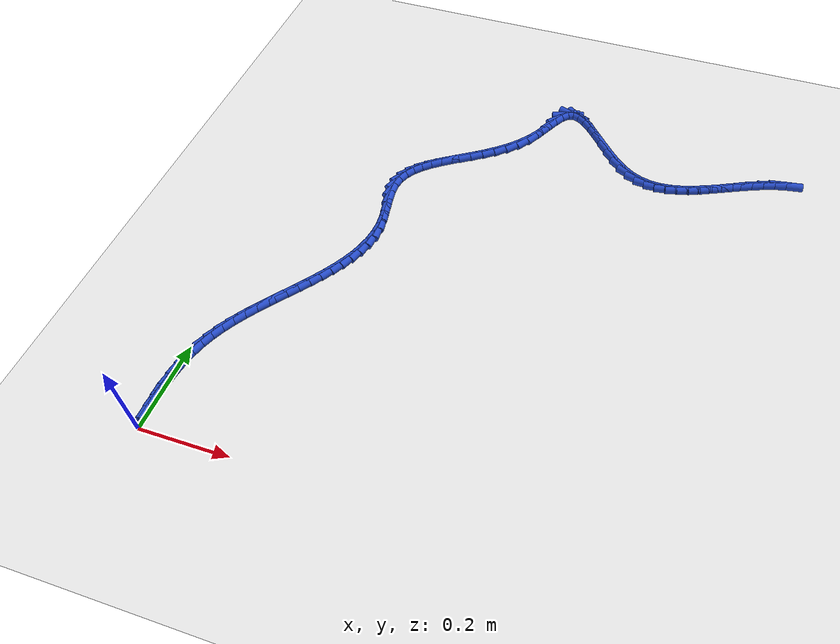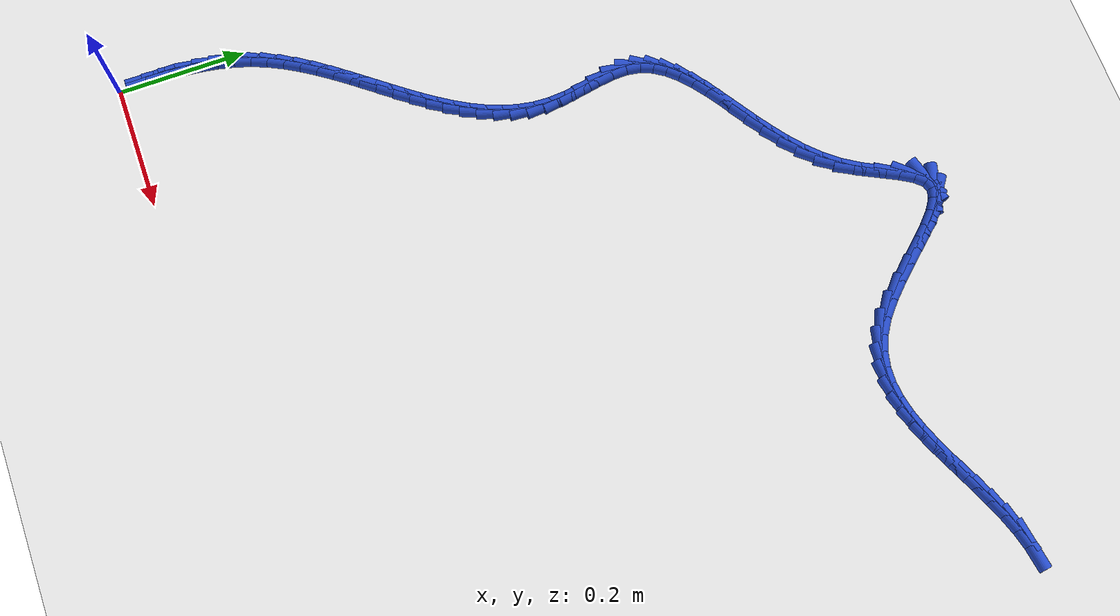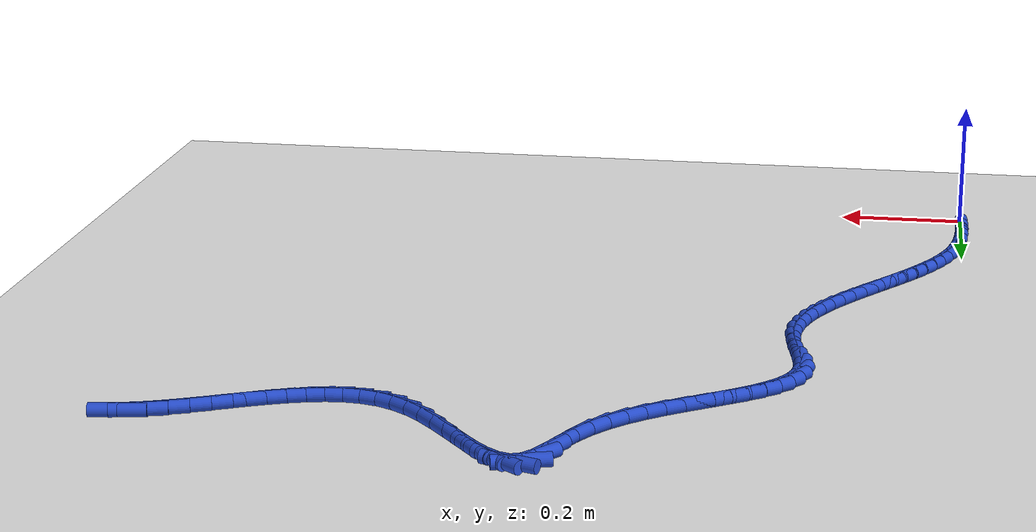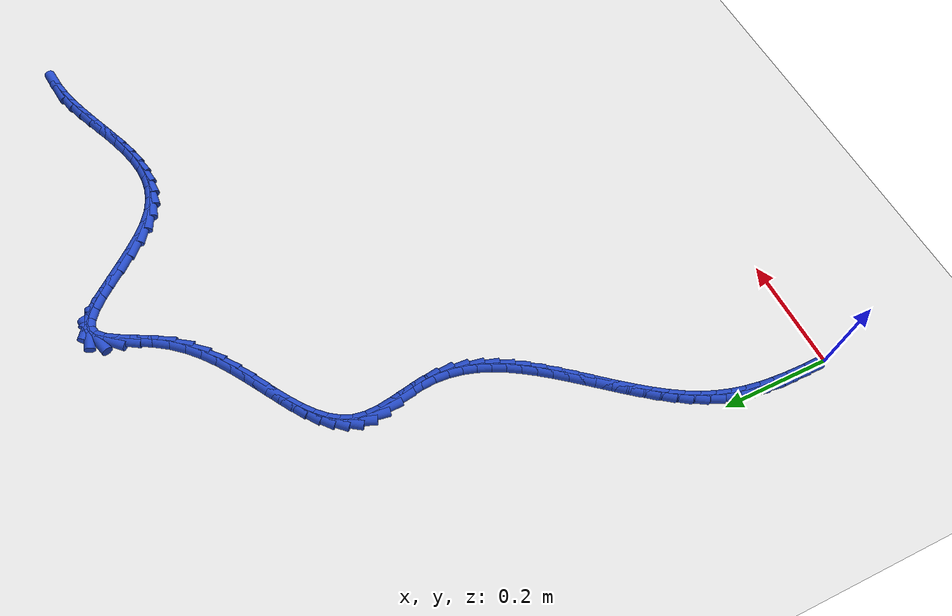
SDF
<sdf version="1.6">
 <world name="default">
  <model name="ground_plane">
   <static>1</static>
   <link name="link">
    <collision name="collision">
     <geometry><plane><normal>0 0 1</normal><size>100 100</size></plane></geometry>
     <surface><friction><ode><mu>100</mu><mu2>50</mu2></ode></friction></surface>
    </collision>
    <visual name="visual">
     <cast_shadows>0</cast_shadows>
     <geometry><plane><normal>0 0 1</normal><size>100 100</size></plane></geometry>
     <material>
      <script><uri>file://media/materials/scripts/gazebo.material</uri><name>Gazebo/WhiteGlow</name></script>
     </material>
    </visual>
   </link>
  </model>
  <model name="line">
   <link name="link_2">
    <pose>-0.000993579345261635 0.05327129770497839 0.01 0 1.57 1.5529341268489962</pose>
    <collision name="collision">
     <geometry><cylinder><radius>0.01</radius><length>0.08</length></cylinder></geometry>
    </collision>
    <visual name="visual">
     <material>
      <script><name>Gazebo/Blue</name><uri>file://media/materials/scripts/gazebo.material</uri></script>
     </material>
     <geometry><cylinder><radius>0.01</radius><length>0.08</length></cylinder></geometry>
    </visual>
   </link>
   <link name="link_3">
    <pose>-0.0005182153270759258 0.07988131563610236 0.01 0 1.57 1.5163877474611058</pose>
    <collision name="collision">
     <geometry><cylinder><radius>0.01</radius><length>0.08</length></cylinder></geometry>
    </collision>
    <visual name="visual">
     <material>
      <script><name>Gazebo/Blue</name><uri>file://media/materials/scripts/gazebo.material</uri></script>
     </material>
     <geometry><cylinder><radius>0.01</radius><length>0.08</length></cylinder></geometry>
    </visual>
   </link>
   <link name="link_4">
    <pose>0.0009230593838456076 0.10634501399168801 0.01 0 1.57 1.470240526559874</pose>
    <collision name="collision">
     <geometry><cylinder><radius>0.01</radius><length>0.08</length></cylinder></geometry>
    </collision>
    <visual name="visual">
     <material>
      <script><name>Gazebo/Blue</name><uri>file://media/materials/scripts/gazebo.material</uri></script>
     </material>
     <geometry><cylinder><radius>0.01</radius><length>0.08</length></cylinder></geometry>
    </visual>
   </link>
   <link name="link_5">
    <pose>0.003568600961646568 0.13256546855076415 0.01 0 1.57 1.4141264561284386</pose>
    <collision name="collision">
     <geometry><cylinder><radius>0.01</radius><length>0.08</length></cylinder></geometry>
    </collision>
    <visual name="visual">
     <material>
      <script><name>Gazebo/Blue</name><uri>file://media/materials/scripts/gazebo.material</uri></script>
     </material>
     <geometry><cylinder><radius>0.01</radius><length>0.08</length></cylinder></geometry>
    </visual>
   </link>
   <link name="link_6">
    <pose>0.007656765580470563 0.15844575509235964 0.01 0 1.57 1.347820590672643</pose>
    <collision name="collision">
     <geometry><cylinder><radius>0.01</radius><length>0.08</length></cylinder></geometry>
    </collision>
    <visual name="visual">
     <material>
      <script><name>Gazebo/Blue</name><uri>file://media/materials/scripts/gazebo.material</uri></script>
     </material>
     <geometry><cylinder><radius>0.01</radius><length>0.08</length></cylinder></geometry>
    </visual>
   </link>
   <link name="link_7">
    <pose>0.013425909414461193 0.18388894939550335 0.01 0 1.57 1.2714131816787544</pose>
    <collision name="collision">
     <geometry><cylinder><radius>0.01</radius><length>0.08</length></cylinder></geometry>
    </collision>
    <visual name="visual">
     <material>
      <script><name>Gazebo/Blue</name><uri>file://media/materials/scripts/gazebo.material</uri></script>
     </material>
     <geometry><cylinder><radius>0.01</radius><length>0.08</length></cylinder></geometry>
    </visual>
   </link>
   <link name="link_8">
    <pose>0.02111438863776207 0.20879812723922409 0.01 0 1.57 1.1870497626984773</pose>
    <collision name="collision">
     <geometry><cylinder><radius>0.01</radius><length>0.08</length></cylinder></geometry>
    </collision>
    <visual name="visual">
     <material>
      <script><name>Gazebo/Blue</name><uri>file://media/materials/scripts/gazebo.material</uri></script>
     </material>
     <geometry><cylinder><radius>0.01</radius><length>0.08</length></cylinder></geometry>
    </visual>
   </link>
   <link name="link_9">
    <pose>0.030922170363403986 0.2330890340069633 0.01 0 1.57 1.1091262469277718</pose>
    <collision name="collision">
     <geometry><cylinder><radius>0.01</radius><length>0.08</length></cylinder></geometry>
    </collision>
    <visual name="visual">
     <material>
      <script><name>Gazebo/Blue</name><uri>file://media/materials/scripts/gazebo.material</uri></script>
     </material>
     <geometry><cylinder><radius>0.01</radius><length>0.08</length></cylinder></geometry>
    </visual>
   </link>
   <link name="link_10">
    <pose>0.04271327307097997 0.25678828875724674 0.01 0 1.57 1.044774451590658</pose>
    <collision name="collision">
     <geometry><cylinder><radius>0.01</radius><length>0.08</length></cylinder></geometry>
    </collision>
    <visual name="visual">
     <material>
      <script><name>Gazebo/Blue</name><uri>file://media/materials/scripts/gazebo.material</uri></script>
     </material>
     <geometry><cylinder><radius>0.01</radius><length>0.08</length></cylinder></geometry>
    </visual>
   </link>
   <link name="link_11">
    <pose>0.05617796223108827 0.2799798545373734 0.01 0 1.57 0.9935671619011062</pose>
    <collision name="collision">
     <geometry><cylinder><radius>0.01</radius><length>0.08</length></cylinder></geometry>
    </collision>
    <visual name="visual">
     <material>
      <script><name>Gazebo/Blue</name><uri>file://media/materials/scripts/gazebo.material</uri></script>
     </material>
     <geometry><cylinder><radius>0.01</radius><length>0.08</length></cylinder></geometry>
    </visual>
   </link>
   <link name="link_12">
    <pose>0.07100504404337767 0.30274817600021203 0.01 0 1.57 0.9547754643559948</pose>
    <collision name="collision">
     <geometry><cylinder><radius>0.01</radius><length>0.08</length></cylinder></geometry>
    </collision>
    <visual name="visual">
     <material>
      <script><name>Gazebo/Blue</name><uri>file://media/materials/scripts/gazebo.material</uri></script>
     </material>
     <geometry><cylinder><radius>0.01</radius><length>0.08</length></cylinder></geometry>
    </visual>
   </link>
   <link name="link_13">
    <pose>0.086883324707497 0.32517769779863154 0.01 0 1.57 0.9276730989702013</pose>
    <collision name="collision">
     <geometry><cylinder><radius>0.01</radius><length>0.08</length></cylinder></geometry>
    </collision>
    <visual name="visual">
     <material>
      <script><name>Gazebo/Blue</name><uri>file://media/materials/scripts/gazebo.material</uri></script>
     </material>
     <geometry><cylinder><radius>0.01</radius><length>0.08</length></cylinder></geometry>
    </visual>
   </link>
   <link name="link_14">
    <pose>0.10350161042309504 0.34735286458550085 0.01 0 1.57 0.9116843677062412</pose>
    <collision name="collision">
     <geometry><cylinder><radius>0.01</radius><length>0.08</length></cylinder></geometry>
    </collision>
    <visual name="visual">
     <material>
      <script><name>Gazebo/Blue</name><uri>file://media/materials/scripts/gazebo.material</uri></script>
     </material>
     <geometry><cylinder><radius>0.01</radius><length>0.08</length></cylinder></geometry>
    </visual>
   </link>
   <link name="link_15">
    <pose>0.12054870738982067 0.36935812101368887 0.01 0 1.57 0.9064645990081811</pose>
    <collision name="collision">
     <geometry><cylinder><radius>0.01</radius><length>0.08</length></cylinder></geometry>
    </collision>
    <visual name="visual">
     <material>
      <script><name>Gazebo/Blue</name><uri>file://media/materials/scripts/gazebo.material</uri></script>
     </material>
     <geometry><cylinder><radius>0.01</radius><length>0.08</length></cylinder></geometry>
    </visual>
   </link>
   <link name="link_16">
    <pose>0.13771342180732257 0.39127791173606435 0.01 0 1.57 0.9119398595168361</pose>
    <collision name="collision">
     <geometry><cylinder><radius>0.01</radius><length>0.08</length></cylinder></geometry>
    </collision>
    <visual name="visual">
     <material>
      <script><name>Gazebo/Blue</name><uri>file://media/materials/scripts/gazebo.material</uri></script>
     </material>
     <geometry><cylinder><radius>0.01</radius><length>0.08</length></cylinder></geometry>
    </visual>
   </link>
   <link name="link_17">
    <pose>0.15468455987524968 0.4131966814054964 0.01 0 1.57 0.9283221466589692</pose>
    <collision name="collision">
     <geometry><cylinder><radius>0.01</radius><length>0.08</length></cylinder></geometry>
    </collision>
    <visual name="visual">
     <material>
      <script><name>Gazebo/Blue</name><uri>file://media/materials/scripts/gazebo.material</uri></script>
     </material>
     <geometry><cylinder><radius>0.01</radius><length>0.08</length></cylinder></geometry>
    </visual>
   </link>
   <link name="link_18">
    <pose>0.17115092779325067 0.4351988746748538 0.01 0 1.57 0.9561048122682099</pose>
    <collision name="collision">
     <geometry><cylinder><radius>0.01</radius><length>0.08</length></cylinder></geometry>
    </collision>
    <visual name="visual">
     <material>
      <script><name>Gazebo/Blue</name><uri>file://media/materials/scripts/gazebo.material</uri></script>
     </material>
     <geometry><cylinder><radius>0.01</radius><length>0.08</length></cylinder></geometry>
    </visual>
   </link>
   <link name="link_19">
    <pose>0.1868013317609745 0.45736893619700547 0.01 0 1.57 0.9960310596495743</pose>
    <collision name="collision">
     <geometry><cylinder><radius>0.01</radius><length>0.08</length></cylinder></geometry>
    </collision>
    <visual name="visual">
     <material>
      <script><name>Gazebo/Blue</name><uri>file://media/materials/scripts/gazebo.material</uri></script>
     </material>
     <geometry><cylinder><radius>0.01</radius><length>0.08</length></cylinder></geometry>
    </visual>
   </link>
   <link name="link_20">
    <pose>0.2013245779780699 0.4797913106248205 0.01 0 1.57 1.0490150875931776</pose>
    <collision name="collision">
     <geometry><cylinder><radius>0.01</radius><length>0.08</length></cylinder></geometry>
    </collision>
    <visual name="visual">
     <material>
      <script><name>Gazebo/Blue</name><uri>file://media/materials/scripts/gazebo.material</uri></script>
     </material>
     <geometry><cylinder><radius>0.01</radius><length>0.08</length></cylinder></geometry>
    </visual>
   </link>
   <link name="link_21">
    <pose>0.21440947264418564 0.5025504426111673 0.01 0 1.57 1.1159816032242178</pose>
    <collision name="collision">
     <geometry><cylinder><radius>0.01</radius><length>0.08</length></cylinder></geometry>
    </collision>
    <visual name="visual">
     <material>
      <script><name>Gazebo/Blue</name><uri>file://media/materials/scripts/gazebo.material</uri></script>
     </material>
     <geometry><cylinder><radius>0.01</radius><length>0.08</length></cylinder></geometry>
    </visual>
   </link>
   <link name="link_22">
    <pose>0.22574482195897055 0.525730776808915 0.01 0 1.57 1.1975822549678123</pose>
    <collision name="collision">
     <geometry><cylinder><radius>0.01</radius><length>0.08</length></cylinder></geometry>
    </collision>
    <visual name="visual">
     <material>
      <script><name>Gazebo/Blue</name><uri>file://media/materials/scripts/gazebo.material</uri></script>
     </material>
     <geometry><cylinder><radius>0.01</radius><length>0.08</length></cylinder></geometry>
    </visual>
   </link>
   <link name="link_23">
    <pose>0.23501943212207346 0.5494167578709327 0.01 0 1.57 1.29376698057198</pose>
    <collision name="collision">
     <geometry><cylinder><radius>0.01</radius><length>0.08</length></cylinder></geometry>
    </collision>
    <visual name="visual">
     <material>
      <script><name>Gazebo/Blue</name><uri>file://media/materials/scripts/gazebo.material</uri></script>
     </material>
     <geometry><cylinder><radius>0.01</radius><length>0.08</length></cylinder></geometry>
    </visual>
   </link>
   <link name="link_24">
    <pose>0.24192210933314323 0.5736928304500892 0.01 0 1.57 1.403265335978539</pose>
    <collision name="collision">
     <geometry><cylinder><radius>0.01</radius><length>0.08</length></cylinder></geometry>
    </collision>
    <visual name="visual">
     <material>
      <script><name>Gazebo/Blue</name><uri>file://media/materials/scripts/gazebo.material</uri></script>
     </material>
     <geometry><cylinder><radius>0.01</radius><length>0.08</length></cylinder></geometry>
    </visual>
   </link>
   <link name="link_25">
    <pose>0.2461416597918286 0.5986434391992534 0.01 0 1.57 1.5231758229309047</pose>
    <collision name="collision">
     <geometry><cylinder><radius>0.01</radius><length>0.08</length></cylinder></geometry>
    </collision>
    <visual name="visual">
     <material>
      <script><name>Gazebo/Blue</name><uri>file://media/materials/scripts/gazebo.material</uri></script>
     </material>
     <geometry><cylinder><radius>0.01</radius><length>0.08</length></cylinder></geometry>
    </visual>
   </link>
   <link name="link_26">
    <pose>0.2473668896977783 0.624353028771294 0.01 0 1.57 -1.494933936933465</pose>
    <collision name="collision">
     <geometry><cylinder><radius>0.01</radius><length>0.08</length></cylinder></geometry>
    </collision>
    <visual name="visual">
     <material>
      <script><name>Gazebo/Blue</name><uri>file://media/materials/scripts/gazebo.material</uri></script>
     </material>
     <geometry><cylinder><radius>0.01</radius><length>0.08</length></cylinder></geometry>
    </visual>
   </link>
   <link name="link_27">
    <pose>0.24535043959928426 0.6508823844252022 0.01 0 1.57 -1.4087715480247576</pose>
    <collision name="collision">
     <geometry><cylinder><radius>0.01</radius><length>0.08</length></cylinder></geometry>
    </collision>
    <visual name="visual">
     <material>
      <script><name>Gazebo/Blue</name><uri>file://media/materials/scripts/gazebo.material</uri></script>
     </material>
     <geometry><cylinder><radius>0.01</radius><length>0.08</length></cylinder></geometry>
    </visual>
   </link>
   <link name="link_28">
    <pose>0.24093619177847547 0.6778878364745462 0.01 0 1.57 -1.384444427604644</pose>
    <collision name="collision">
     <geometry><cylinder><radius>0.01</radius><length>0.08</length></cylinder></geometry>
    </collision>
    <visual name="visual">
     <material>
      <script><name>Gazebo/Blue</name><uri>file://media/materials/scripts/gazebo.material</uri></script>
     </material>
     <geometry><cylinder><radius>0.01</radius><length>0.08</length></cylinder></geometry>
    </visual>
   </link>
   <link name="link_29">
    <pose>0.23588361206379785 0.7046863657727563 0.01 0 1.57 -1.4212126874905262</pose>
    <collision name="collision">
     <geometry><cylinder><radius>0.01</radius><length>0.08</length></cylinder></geometry>
    </collision>
    <visual name="visual">
     <material>
      <script><name>Gazebo/Blue</name><uri>file://media/materials/scripts/gazebo.material</uri></script>
     </material>
     <geometry><cylinder><radius>0.01</radius><length>0.08</length></cylinder></geometry>
    </visual>
   </link>
   <link name="link_30">
    <pose>0.23198052940571381 0.7305844407408563 0.01 0 1.57 -1.5310808358699863</pose>
    <collision name="collision">
     <geometry><cylinder><radius>0.01</radius><length>0.08</length></cylinder></geometry>
    </collision>
    <visual name="visual">
     <material>
      <script><name>Gazebo/Blue</name><uri>file://media/materials/scripts/gazebo.material</uri></script>
     </material>
     <geometry><cylinder><radius>0.01</radius><length>0.08</length></cylinder></geometry>
    </visual>
   </link>
   <link name="link_31">
    <pose>0.23101477275468582 0.7548885297998691 0.01 0 1.57 1.4130602434443644</pose>
    <collision name="collision">
     <geometry><cylinder><radius>0.01</radius><length>0.08</length></cylinder></geometry>
    </collision>
    <visual name="visual">
     <material>
      <script><name>Gazebo/Blue</name><uri>file://media/materials/scripts/gazebo.material</uri></script>
     </material>
     <geometry><cylinder><radius>0.01</radius><length>0.08</length></cylinder></geometry>
    </visual>
   </link>
   <link name="link_32">
    <pose>0.23453396850470723 0.7770138450539543 0.01 0 1.57 1.1893072501443114</pose>
    <collision name="collision">
     <geometry><cylinder><radius>0.01</radius><length>0.08</length></cylinder></geometry>
    </collision>
    <visual name="visual">
     <material>
      <script><name>Gazebo/Blue</name><uri>file://media/materials/scripts/gazebo.material</uri></script>
     </material>
     <geometry><cylinder><radius>0.01</radius><length>0.08</length></cylinder></geometry>
    </visual>
   </link>
   <link name="link_33">
    <pose>0.242575088873368 0.7970594968201021 0.01 0 1.57 0.9906154916773493</pose>
    <collision name="collision">
     <geometry><cylinder><radius>0.01</radius><length>0.08</length></cylinder></geometry>
    </collision>
    <visual name="visual">
     <material>
      <script><name>Gazebo/Blue</name><uri>file://media/materials/scripts/gazebo.material</uri></script>
     </material>
     <geometry><cylinder><radius>0.01</radius><length>0.08</length></cylinder></geometry>
    </visual>
   </link>
   <link name="link_34">
    <pose>0.25458927150356236 0.8153898124483653 0.01 0 1.57 0.8329544414922904</pose>
    <collision name="collision">
     <geometry><cylinder><radius>0.01</radius><length>0.08</length></cylinder></geometry>
    </collision>
    <visual name="visual">
     <material>
      <script><name>Gazebo/Blue</name><uri>file://media/materials/scripts/gazebo.material</uri></script>
     </material>
     <geometry><cylinder><radius>0.01</radius><length>0.08</length></cylinder></geometry>
    </visual>
   </link>
   <link name="link_35">
    <pose>0.27002636674127845 0.8323697020694663 0.01 0 1.57 0.7180018857014266</pose>
    <collision name="collision">
     <geometry><cylinder><radius>0.01</radius><length>0.08</length></cylinder></geometry>
    </collision>
    <visual name="visual">
     <material>
      <script><name>Gazebo/Blue</name><uri>file://media/materials/scripts/gazebo.material</uri></script>
     </material>
     <geometry><cylinder><radius>0.01</radius><length>0.08</length></cylinder></geometry>
    </visual>
   </link>
   <link name="link_36">
    <pose>0.2883362249325047 0.848364075814129 0.01 0 1.57 0.640373728744902</pose>
    <collision name="collision">
     <geometry><cylinder><radius>0.01</radius><length>0.08</length></cylinder></geometry>
    </collision>
    <visual name="visual">
     <material>
      <script><name>Gazebo/Blue</name><uri>file://media/materials/scripts/gazebo.material</uri></script>
     </material>
     <geometry><cylinder><radius>0.01</radius><length>0.08</length></cylinder></geometry>
    </visual>
   </link>
   <link name="link_37">
    <pose>0.30896869642322916 0.8637378438130758 0.01 0 1.57 0.5935884004744302</pose>
    <collision name="collision">
     <geometry><cylinder><radius>0.01</radius><length>0.08</length></cylinder></geometry>
    </collision>
    <visual name="visual">
     <material>
      <script><name>Gazebo/Blue</name><uri>file://media/materials/scripts/gazebo.material</uri></script>
     </material>
     <geometry><cylinder><radius>0.01</radius><length>0.08</length></cylinder></geometry>
    </visual>
   </link>
   <link name="link_38">
    <pose>0.33137363155943994 0.8788559161970296 0.01 0 1.57 0.5724848572416695</pose>
    <collision name="collision">
     <geometry><cylinder><radius>0.01</radius><length>0.08</length></cylinder></geometry>
    </collision>
    <visual name="visual">
     <material>
      <script><name>Gazebo/Blue</name><uri>file://media/materials/scripts/gazebo.material</uri></script>
     </material>
     <geometry><cylinder><radius>0.01</radius><length>0.08</length></cylinder></geometry>
    </visual>
   </link>
   <link name="link_39">
    <pose>0.3550008806871256 0.8940832030967137 0.01 0 1.57 0.573673986408293</pose>
    <collision name="collision">
     <geometry><cylinder><radius>0.01</radius><length>0.08</length></cylinder></geometry>
    </collision>
    <visual name="visual">
     <material>
      <script><name>Gazebo/Blue</name><uri>file://media/materials/scripts/gazebo.material</uri></script>
     </material>
     <geometry><cylinder><radius>0.01</radius><length>0.08</length></cylinder></geometry>
    </visual>
   </link>
   <link name="link_40">
    <pose>0.379300294152274 0.909784614642851 0.01 0 1.57 0.5953228110911825</pose>
    <collision name="collision">
     <geometry><cylinder><radius>0.01</radius><length>0.08</length></cylinder></geometry>
    </collision>
    <visual name="visual">
     <material>
      <script><name>Gazebo/Blue</name><uri>file://media/materials/scripts/gazebo.material</uri></script>
     </material>
     <geometry><cylinder><radius>0.01</radius><length>0.08</length></cylinder></geometry>
    </visual>
   </link>
   <link name="link_41">
    <pose>0.40372172230087355 0.9263250609661642 0.01 0 1.57 0.6367835692463997</pose>
    <collision name="collision">
     <geometry><cylinder><radius>0.01</radius><length>0.08</length></cylinder></geometry>
    </collision>
    <visual name="visual">
     <material>
      <script><name>Gazebo/Blue</name><uri>file://media/materials/scripts/gazebo.material</uri></script>
     </material>
     <geometry><cylinder><radius>0.01</radius><length>0.08</length></cylinder></geometry>
    </visual>
   </link>
   <link name="link_42">
    <pose>0.42771501547891244 0.9440694521973765 0.01 0 1.57 0.6981664038873943</pose>
    <collision name="collision">
     <geometry><cylinder><radius>0.01</radius><length>0.08</length></cylinder></geometry>
    </collision>
    <visual name="visual">
     <material>
      <script><name>Gazebo/Blue</name><uri>file://media/materials/scripts/gazebo.material</uri></script>
     </material>
     <geometry><cylinder><radius>0.01</radius><length>0.08</length></cylinder></geometry>
    </visual>
   </link>
   <link name="link_43">
    <pose>0.45073002403237855 0.9633826984672105 0.01 0 1.57 0.779792260635435</pose>
    <collision name="collision">
     <geometry><cylinder><radius>0.01</radius><length>0.08</length></cylinder></geometry>
    </collision>
    <visual name="visual">
     <material>
      <script><name>Gazebo/Blue</name><uri>file://media/materials/scripts/gazebo.material</uri></script>
     </material>
     <geometry><cylinder><radius>0.01</radius><length>0.08</length></cylinder></geometry>
    </visual>
   </link>
   <link name="link_44">
    <pose>0.4722165983072607 0.98462970990639 0.01 0 1.57 0.8814311253326867</pose>
    <collision name="collision">
     <geometry><cylinder><radius>0.01</radius><length>0.08</length></cylinder></geometry>
    </collision>
    <visual name="visual">
     <material>
      <script><name>Gazebo/Blue</name><uri>file://media/materials/scripts/gazebo.material</uri></script>
     </material>
     <geometry><cylinder><radius>0.01</radius><length>0.08</length></cylinder></geometry>
    </visual>
   </link>
   <link name="link_45">
    <pose>0.4916245886495465 1.0081753966456368 0.01 0 1.57 0.9994162548701124</pose>
    <collision name="collision">
     <geometry><cylinder><radius>0.01</radius><length>0.08</length></cylinder></geometry>
    </collision>
    <visual name="visual">
     <material>
      <script><name>Gazebo/Blue</name><uri>file://media/materials/scripts/gazebo.material</uri></script>
     </material>
     <geometry><cylinder><radius>0.01</radius><length>0.08</length></cylinder></geometry>
    </visual>
   </link>
   <link name="link_46">
    <pose>0.508434108664295 1.0343210906718612 0.01 0 1.57 1.087511052399249</pose>
    <collision name="collision">
     <geometry><cylinder><radius>0.01</radius><length>0.08</length></cylinder></geometry>
    </collision>
    <visual name="visual">
     <material>
      <script><name>Gazebo/Blue</name><uri>file://media/materials/scripts/gazebo.material</uri></script>
     </material>
     <geometry><cylinder><radius>0.01</radius><length>0.08</length></cylinder></geometry>
    </visual>
   </link>
   <link name="link_47">
    <pose>0.5228636943702706 1.061816819589835 0.01 0 1.57 1.1060948280510068</pose>
    <collision name="collision">
     <geometry><cylinder><radius>0.01</radius><length>0.08</length></cylinder></geometry>
    </collision>
    <visual name="visual">
     <material>
      <script><name>Gazebo/Blue</name><uri>file://media/materials/scripts/gazebo.material</uri></script>
     </material>
     <geometry><cylinder><radius>0.01</radius><length>0.08</length></cylinder></geometry>
    </visual>
   </link>
   <link name="link_48">
    <pose>0.5358946379844565 1.0878101853319329 0.01 0 1.57 1.040328941499191</pose>
    <collision name="collision">
     <geometry><cylinder><radius>0.01</radius><length>0.08</length></cylinder></geometry>
    </collision>
    <visual name="visual">
     <material>
      <script><name>Gazebo/Blue</name><uri>file://media/materials/scripts/gazebo.material</uri></script>
     </material>
     <geometry><cylinder><radius>0.01</radius><length>0.08</length></cylinder></geometry>
    </visual>
   </link>
   <link name="link_49">
    <pose>0.5485433633436336 1.1093749840592864 0.01 0 1.57 0.8191066402095308</pose>
    <collision name="collision">
     <geometry><cylinder><radius>0.01</radius><length>0.08</length></cylinder></geometry>
    </collision>
    <visual name="visual">
     <material>
      <script><name>Gazebo/Blue</name><uri>file://media/materials/scripts/gazebo.material</uri></script>
     </material>
     <geometry><cylinder><radius>0.01</radius><length>0.08</length></cylinder></geometry>
    </visual>
   </link>
   <link name="link_50">
    <pose>0.5618262942845831 1.1235850119330275 0.01 0 1.57 0.28967364256238726</pose>
    <collision name="collision">
     <geometry><cylinder><radius>0.01</radius><length>0.08</length></cylinder></geometry>
    </collision>
    <visual name="visual">
     <material>
      <script><name>Gazebo/Blue</name><uri>file://media/materials/scripts/gazebo.material</uri></script>
     </material>
     <geometry><cylinder><radius>0.01</radius><length>0.08</length></cylinder></geometry>
    </visual>
   </link>
   <link name="link_51">
    <pose>0.5766376961548272 1.1279996598876025 0.01 0 1.57 -0.28343651736742365</pose>
    <collision name="collision">
     <geometry><cylinder><radius>0.01</radius><length>0.08</length></cylinder></geometry>
    </collision>
    <visual name="visual">
     <material>
      <script><name>Gazebo/Blue</name><uri>file://media/materials/scripts/gazebo.material</uri></script>
     </material>
     <geometry><cylinder><radius>0.01</radius><length>0.08</length></cylinder></geometry>
    </visual>
   </link>
   <link name="link_52">
    <pose>0.5931113772725999 1.123201227547556 0.01 0 1.57 -0.5988150294666741</pose>
    <collision name="collision">
     <geometry><cylinder><radius>0.01</radius><length>0.08</length></cylinder></geometry>
    </collision>
    <visual name="visual">
     <material>
      <script><name>Gazebo/Blue</name><uri>file://media/materials/scripts/gazebo.material</uri></script>
     </material>
     <geometry><cylinder><radius>0.01</radius><length>0.08</length></cylinder></geometry>
    </visual>
   </link>
   <link name="link_53">
    <pose>0.6110890023099238 1.1109333208741223 0.01 0 1.57 -0.7497360749046943</pose>
    <collision name="collision">
     <geometry><cylinder><radius>0.01</radius><length>0.08</length></cylinder></geometry>
    </collision>
    <visual name="visual">
     <material>
      <script><name>Gazebo/Blue</name><uri>file://media/materials/scripts/gazebo.material</uri></script>
     </material>
     <geometry><cylinder><radius>0.01</radius><length>0.08</length></cylinder></geometry>
    </visual>
   </link>
   <link name="link_54">
    <pose>0.6304116306218182 1.0929419520368484 0.01 0 1.57 -0.8197587748956852</pose>
    <collision name="collision">
     <geometry><cylinder><radius>0.01</radius><length>0.08</length></cylinder></geometry>
    </collision>
    <visual name="visual">
     <material>
      <script><name>Gazebo/Blue</name><uri>file://media/materials/scripts/gazebo.material</uri></script>
     </material>
     <geometry><cylinder><radius>0.01</radius><length>0.08</length></cylinder></geometry>
    </visual>
   </link>
   <link name="link_55">
    <pose>0.6509203215633032 1.0709731332052836 0.01 0 1.57 -0.8435893376191165</pose>
    <collision name="collision">
     <geometry><cylinder><radius>0.01</radius><length>0.08</length></cylinder></geometry>
    </collision>
    <visual name="visual">
     <material>
      <script><name>Gazebo/Blue</name><uri>file://media/materials/scripts/gazebo.material</uri></script>
     </material>
     <geometry><cylinder><radius>0.01</radius><length>0.08</length></cylinder></geometry>
    </visual>
   </link>
   <link name="link_56">
    <pose>0.6724561344893986 1.0467728765489757 0.01 0 1.57 -0.8338143996841013</pose>
    <collision name="collision">
     <geometry><cylinder><radius>0.01</radius><length>0.08</length></cylinder></geometry>
    </collision>
    <visual name="visual">
     <material>
      <script><name>Gazebo/Blue</name><uri>file://media/materials/scripts/gazebo.material</uri></script>
     </material>
     <geometry><cylinder><radius>0.01</radius><length>0.08</length></cylinder></geometry>
    </visual>
   </link>
   <link name="link_57">
    <pose>0.6948601287551242 1.0220871942374734 0.01 0 1.57 -0.7920992238722865</pose>
    <collision name="collision">
     <geometry><cylinder><radius>0.01</radius><length>0.08</length></cylinder></geometry>
    </collision>
    <visual name="visual">
     <material>
      <script><name>Gazebo/Blue</name><uri>file://media/materials/scripts/gazebo.material</uri></script>
     </material>
     <geometry><cylinder><radius>0.01</radius><length>0.08</length></cylinder></geometry>
    </visual>
   </link>
   <link name="link_58">
    <pose>0.7179733637154994 0.998662098440325 0.01 0 1.57 -0.7119170840673851</pose>
    <collision name="collision">
     <geometry><cylinder><radius>0.01</radius><length>0.08</length></cylinder></geometry>
    </collision>
    <visual name="visual">
     <material>
      <script><name>Gazebo/Blue</name><uri>file://media/materials/scripts/gazebo.material</uri></script>
     </material>
     <geometry><cylinder><radius>0.01</radius><length>0.08</length></cylinder></geometry>
    </visual>
   </link>
   <link name="link_59">
    <pose>0.741636898725544 0.9782436013270788 0.01 0 1.57 -0.5785331346976742</pose>
    <collision name="collision">
     <geometry><cylinder><radius>0.01</radius><length>0.08</length></cylinder></geometry>
    </collision>
    <visual name="visual">
     <material>
      <script><name>Gazebo/Blue</name><uri>file://media/materials/scripts/gazebo.material</uri></script>
     </material>
     <geometry><cylinder><radius>0.01</radius><length>0.08</length></cylinder></geometry>
    </visual>
   </link>
   <link name="link_60">
    <pose>0.7656945539928224 0.9625321733921062 0.01 0 1.57 -0.40355195338283684</pose>
    <collision name="collision">
     <geometry><cylinder><radius>0.01</radius><length>0.08</length></cylinder></geometry>
    </collision>
    <visual name="visual">
     <material>
      <script><name>Gazebo/Blue</name><uri>file://media/materials/scripts/gazebo.material</uri></script>
     </material>
     <geometry><cylinder><radius>0.01</radius><length>0.08</length></cylinder></geometry>
    </visual>
   </link>
   <link name="link_61">
    <pose>0.7900567395955146 0.9521298511463018 0.01 0 1.57 -0.2241500601812755</pose>
    <collision name="collision">
     <geometry><cylinder><radius>0.01</radius><length>0.08</length></cylinder></geometry>
    </collision>
    <visual name="visual">
     <material>
      <script><name>Gazebo/Blue</name><uri>file://media/materials/scripts/gazebo.material</uri></script>
     </material>
     <geometry><cylinder><radius>0.01</radius><length>0.08</length></cylinder></geometry>
    </visual>
   </link>
   <link name="link_62">
    <pose>0.8147022189312214 0.946511148126872 0.01 0 1.57 -0.0566192326462113</pose>
    <collision name="collision">
     <geometry><cylinder><radius>0.01</radius><length>0.08</length></cylinder></geometry>
    </collision>
    <visual name="visual">
     <material>
      <script><name>Gazebo/Blue</name><uri>file://media/materials/scripts/gazebo.material</uri></script>
     </material>
     <geometry><cylinder><radius>0.01</radius><length>0.08</length></cylinder></geometry>
    </visual>
   </link>
   <link name="link_63">
    <pose>0.8396128690153837 0.9450992171518168 0.01 0 1.57 0.08793625953918975</pose>
    <collision name="collision">
     <geometry><cylinder><radius>0.01</radius><length>0.08</length></cylinder></geometry>
    </collision>
    <visual name="visual">
     <material>
      <script><name>Gazebo/Blue</name><uri>file://media/materials/scripts/gazebo.material</uri></script>
     </material>
     <geometry><cylinder><radius>0.01</radius><length>0.08</length></cylinder></geometry>
    </visual>
   </link>
   <link name="link_64">
    <pose>0.864770566863442 0.9473172110391358 0.01 0 1.57 0.2047229971440268</pose>
    <collision name="collision">
     <geometry><cylinder><radius>0.01</radius><length>0.08</length></cylinder></geometry>
    </collision>
    <visual name="visual">
     <material>
      <script><name>Gazebo/Blue</name><uri>file://media/materials/scripts/gazebo.material</uri></script>
     </material>
     <geometry><cylinder><radius>0.01</radius><length>0.08</length></cylinder></geometry>
    </visual>
   </link>
   <link name="link_65">
    <pose>0.8901571894908371 0.9525882826068293 0.01 0 1.57 0.29389485561547296</pose>
    <collision name="collision">
     <geometry><cylinder><radius>0.01</radius><length>0.08</length></cylinder></geometry>
    </collision>
    <visual name="visual">
     <material>
      <script><name>Gazebo/Blue</name><uri>file://media/materials/scripts/gazebo.material</uri></script>
     </material>
     <geometry><cylinder><radius>0.01</radius><length>0.08</length></cylinder></geometry>
    </visual>
   </link>
   <link name="link_66">
    <pose>0.9157546139130097 0.9603355846728961 0.01 0 1.57 0.35793403908037064</pose>
    <collision name="collision">
     <geometry><cylinder><radius>0.01</radius><length>0.08</length></cylinder></geometry>
    </collision>
    <visual name="visual">
     <material>
      <script><name>Gazebo/Blue</name><uri>file://media/materials/scripts/gazebo.material</uri></script>
     </material>
     <geometry><cylinder><radius>0.01</radius><length>0.08</length></cylinder></geometry>
    </visual>
   </link>
   <link name="link_67">
    <pose>0.9415447171454006 0.9699822700553372 0.01 0 1.57 0.39972354235509167</pose>
    <collision name="collision">
     <geometry><cylinder><radius>0.01</radius><length>0.08</length></cylinder></geometry>
    </collision>
    <visual name="visual">
     <material>
      <script><name>Gazebo/Blue</name><uri>file://media/materials/scripts/gazebo.material</uri></script>
     </material>
     <geometry><cylinder><radius>0.01</radius><length>0.08</length></cylinder></geometry>
    </visual>
   </link>
   <link name="link_68">
    <pose>0.9675093762034503 0.9809514915721517 0.01 0 1.57 0.4215931000063918</pose>
    <collision name="collision">
     <geometry><cylinder><radius>0.01</radius><length>0.08</length></cylinder></geometry>
    </collision>
    <visual name="visual">
     <material>
      <script><name>Gazebo/Blue</name><uri>file://media/materials/scripts/gazebo.material</uri></script>
     </material>
     <geometry><cylinder><radius>0.01</radius><length>0.08</length></cylinder></geometry>
    </visual>
   </link>
   <link name="link_69">
    <pose>0.9936304681025997 0.9926664020413394 0.01 0 1.57 0.4249743791228145</pose>
    <collision name="collision">
     <geometry><cylinder><radius>0.01</radius><length>0.08</length></cylinder></geometry>
    </collision>
    <visual name="visual">
     <material>
      <script><name>Gazebo/Blue</name><uri>file://media/materials/scripts/gazebo.material</uri></script>
     </material>
     <geometry><cylinder><radius>0.01</radius><length>0.08</length></cylinder></geometry>
    </visual>
   </link>
   <link name="link_70">
    <pose>1.0198898698582892 1.0045501542809 0.01 0 1.57 0.4103301031132899</pose>
    <collision name="collision">
     <geometry><cylinder><radius>0.01</radius><length>0.08</length></cylinder></geometry>
    </collision>
    <visual name="visual">
     <material>
      <script><name>Gazebo/Blue</name><uri>file://media/materials/scripts/gazebo.material</uri></script>
     </material>
     <geometry><cylinder><radius>0.01</radius><length>0.08</length></cylinder></geometry>
    </visual>
   </link>
   <link name="link_71">
    <pose>1.0462694584859602 1.016025901108834 0.01 0 1.57 0.37718913463953535</pose>
    <collision name="collision">
     <geometry><cylinder><radius>0.01</radius><length>0.08</length></cylinder></geometry>
    </collision>
    <visual name="visual">
     <material>
      <script><name>Gazebo/Blue</name><uri>file://media/materials/scripts/gazebo.material</uri></script>
     </material>
     <geometry><cylinder><radius>0.01</radius><length>0.08</length></cylinder></geometry>
    </visual>
   </link>
   <link name="link_72">
    <pose>1.0727511110010526 1.0265167953431402 0.01 0 1.57 0.3242553448324908</pose>
    <collision name="collision">
     <geometry><cylinder><radius>0.01</radius><length>0.08</length></cylinder></geometry>
    </collision>
    <visual name="visual">
     <material>
      <script><name>Gazebo/Blue</name><uri>file://media/materials/scripts/gazebo.material</uri></script>
     </material>
     <geometry><cylinder><radius>0.01</radius><length>0.08</length></cylinder></geometry>
    </visual>
   </link>
   <link name="link_73">
    <pose>1.0993167044190075 1.035445989801819 0.01 0 1.57 0.2496662042038173</pose>
    <collision name="collision">
     <geometry><cylinder><radius>0.01</radius><length>0.08</length></cylinder></geometry>
    </collision>
    <visual name="visual">
     <material>
      <script><name>Gazebo/Blue</name><uri>file://media/materials/scripts/gazebo.material</uri></script>
     </material>
     <geometry><cylinder><radius>0.01</radius><length>0.08</length></cylinder></geometry>
    </visual>
   </link>
   <link name="link_74">
    <pose>1.125948115755266 1.0422366373028702 0.01 0 1.57 0.1516783117332457</pose>
    <collision name="collision">
     <geometry><cylinder><radius>0.01</radius><length>0.08</length></cylinder></geometry>
    </collision>
    <visual name="visual">
     <material>
      <script><name>Gazebo/Blue</name><uri>file://media/materials/scripts/gazebo.material</uri></script>
     </material>
     <geometry><cylinder><radius>0.01</radius><length>0.08</length></cylinder></geometry>
    </visual>
   </link>
   <link name="link_292">
    <pose>-0.0014161732133022792 0.0534113457797597 0.01 0 1.57 -1.5442880733887894</pose>
    <collision name="collision">
     <geometry><cylinder><radius>0.01</radius><length>0.08</length></cylinder></geometry>
    </collision>
    <visual name="visual">
     <material>
      <script><name>Gazebo/Blue</name><uri>file://media/materials/scripts/gazebo.material</uri></script>
     </material>
     <geometry><cylinder><radius>0.01</radius><length>0.08</length></cylinder></geometry>
    </visual>
   </link>
  </model>
 </world>
</sdf>
